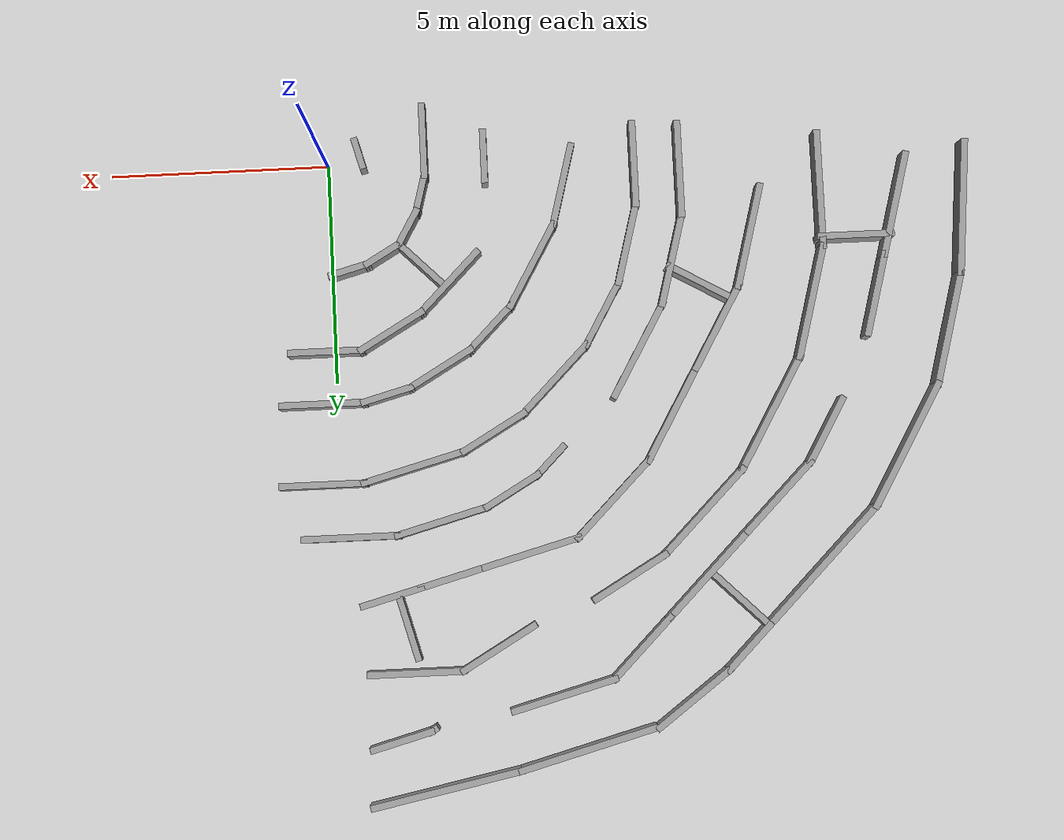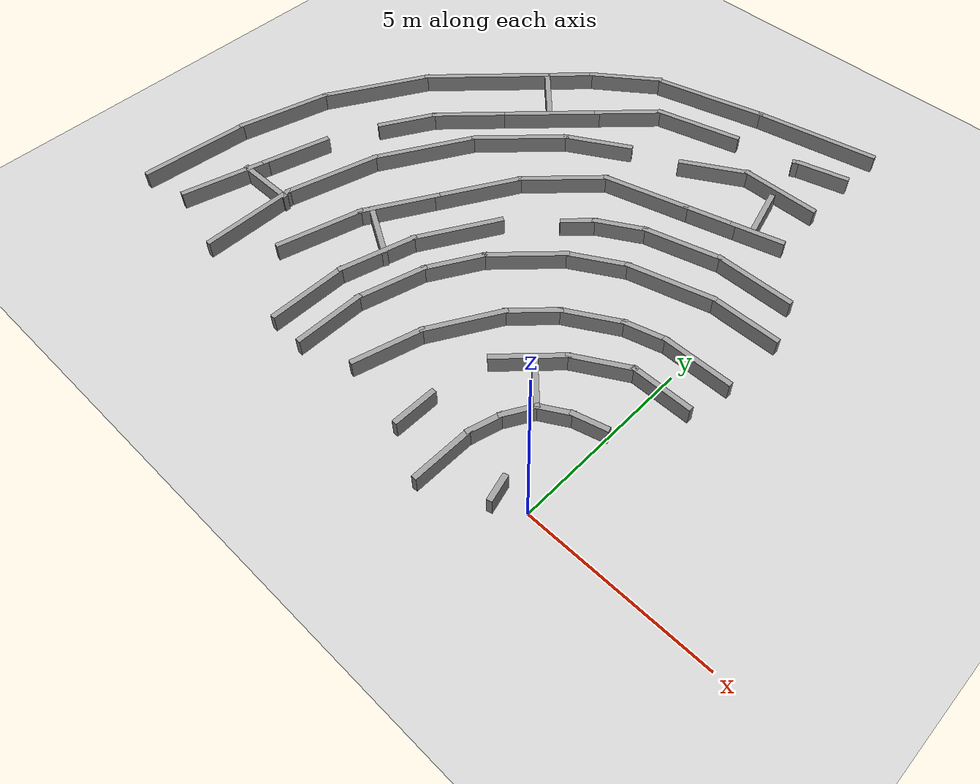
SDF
<sdf version="1.6">
 <world name="default">
  <model name="ground_plane">
   <static>1</static>
   <link name="link">
    <collision name="collision">
     <geometry><plane><normal>0 0 1</normal><size>100 100</size></plane></geometry>
     <surface><friction><ode><mu>100</mu><mu2>50</mu2></ode></friction></surface>
    </collision>
    <visual name="visual">
     <cast_shadows>0</cast_shadows>
     <geometry><plane><normal>0 0 1</normal><size>100 100</size></plane></geometry>
     <material>
      <script><uri>file://media/materials/scripts/gazebo.material</uri><name>Gazebo/Grey</name></script>
     </material>
    </visual>
   </link>
  </model>
  <model name="laby4">
   <pose>-11.3155 -0.151712 0 0 -0 0</pose>
   <link name="Wall_100">
    <collision name="Wall_100_Collision">
     <geometry><box><size>3 0.15 0.5</size></box></geometry>
     <pose>0 0 0.25 0 -0 0</pose>
    </collision>
    <visual name="Wall_100_Visual">
     <pose>0 0 0.25 0 -0 0</pose>
     <geometry><box><size>3 0.15 0.5</size></box></geometry>
     <material>
      <script><uri>file://media/materials/scripts/gazebo.material</uri><name>Gazebo/Grey</name></script>
      <ambient>1 1 1 1</ambient>
     </material>
    </visual>
    <pose>1.51802 6.32561 0 0 0 -2.0944</pose>
   </link>
   <link name="Wall_101">
    <collision name="Wall_101_Collision">
     <geometry><box><size>2.75 0.15 0.5</size></box></geometry>
     <pose>0 0 0.25 0 -0 0</pose>
    </collision>
    <visual name="Wall_101_Visual">
     <pose>0 0 0.25 0 -0 0</pose>
     <geometry><box><size>2.75 0.15 0.5</size></box></geometry>
     <material>
      <script><uri>file://media/materials/scripts/gazebo.material</uri><name>Gazebo/Grey</name></script>
      <ambient>1 1 1 1</ambient>
     </material>
    </visual>
    <pose>0.469052 3.83582 0 0 0 -1.8326</pose>
   </link>
   <link name="Wall_102">
    <collision name="Wall_102_Collision">
     <geometry><box><size>2.75 0.15 0.5</size></box></geometry>
     <pose>0 0 0.25 0 -0 0</pose>
    </collision>
    <visual name="Wall_102_Visual">
     <pose>0 0 0.25 0 -0 0</pose>
     <geometry><box><size>2.75 0.15 0.5</size></box></geometry>
     <material>
      <script><uri>file://media/materials/scripts/gazebo.material</uri><name>Gazebo/Grey</name></script>
      <ambient>1 1 1 1</ambient>
     </material>
    </visual>
    <pose>0.132587 1.28012 0 0 0 -1.5708</pose>
   </link>
   <link name="Wall_130">
    <collision name="Wall_130_Collision">
     <geometry><box><size>2.25 0.15 0.5</size></box></geometry>
     <pose>0 0 0.25 0 -0 0</pose>
    </collision>
    <visual name="Wall_130_Visual">
     <pose>0 0 0.25 0 -0 0</pose>
     <geometry><box><size>2.25 0.15 0.5</size></box></geometry>
     <material>
      <script><uri>file://media/materials/scripts/gazebo.material</uri><name>Gazebo/Grey</name></script>
      <ambient>1 1 1 1</ambient>
     </material>
    </visual>
    <pose>9.73478 11.7732 0 0 -0 3.14159</pose>
   </link>
   <link name="Wall_131">
    <collision name="Wall_131_Collision">
     <geometry><box><size>2 0.15 0.5</size></box></geometry>
     <pose>0 0 0.25 0 -0 0</pose>
    </collision>
    <visual name="Wall_131_Visual">
     <pose>0 0 0.25 0 -0 0</pose>
     <geometry><box><size>2 0.15 0.5</size></box></geometry>
     <material>
      <script><uri>file://media/materials/scripts/gazebo.material</uri><name>Gazebo/Grey</name></script>
      <ambient>1 1 1 1</ambient>
     </material>
    </visual>
    <pose>7.8837 11.3107 0 0 0 -2.61799</pose>
   </link>
   <link name="Wall_133">
    <collision name="Wall_133_Collision">
     <geometry><box><size>1.75 0.15 0.5</size></box></geometry>
     <pose>0 0 0.25 0 -0 0</pose>
    </collision>
    <visual name="Wall_133_Visual">
     <pose>0 0 0.25 0 -0 0</pose>
     <geometry><box><size>1.75 0.15 0.5</size></box></geometry>
     <material>
      <script><uri>file://media/materials/scripts/gazebo.material</uri><name>Gazebo/Grey</name></script>
      <ambient>1 1 1 1</ambient>
     </material>
    </visual>
    <pose>-0.623102 2.36168 0 0 -0 0</pose>
   </link>
   <link name="Wall_145">
    <collision name="Wall_145_Collision">
     <geometry><box><size>2.5 0.15 0.5</size></box></geometry>
     <pose>0 0 0.25 0 -0 0</pose>
    </collision>
    <visual name="Wall_145_Visual">
     <pose>0 0 0.25 0 -0 0</pose>
     <geometry><box><size>2.5 0.15 0.5</size></box></geometry>
     <material>
      <script><uri>file://media/materials/scripts/gazebo.material</uri><name>Gazebo/Grey</name></script>
      <ambient>1 1 1 1</ambient>
     </material>
    </visual>
    <pose>1.80109 2.27995 0 0 -0 1.309</pose>
   </link>
   <link name="Wall_146">
    <collision name="Wall_146_Collision">
     <geometry><box><size>2.25 0.15 0.5</size></box></geometry>
     <pose>0 0 0.25 0 -0 0</pose>
    </collision>
    <visual name="Wall_146_Visual">
     <pose>0 0 0.25 0 -0 0</pose>
     <geometry><box><size>2.25 0.15 0.5</size></box></geometry>
     <material>
      <script><uri>file://media/materials/scripts/gazebo.material</uri><name>Gazebo/Grey</name></script>
      <ambient>1 1 1 1</ambient>
     </material>
    </visual>
    <pose>2.6302 4.32423 0 0 -0 1.0472</pose>
   </link>
   <link name="Wall_147">
    <collision name="Wall_147_Collision">
     <geometry><box><size>2.5 0.15 0.5</size></box></geometry>
     <pose>0 0 0.25 0 -0 0</pose>
    </collision>
    <visual name="Wall_147_Visual">
     <pose>0 0 0.25 0 -0 0</pose>
     <geometry><box><size>2.5 0.15 0.5</size></box></geometry>
     <material>
      <script><uri>file://media/materials/scripts/gazebo.material</uri><name>Gazebo/Grey</name></script>
      <ambient>1 1 1 1</ambient>
     </material>
    </visual>
    <pose>3.7427 6.25114 0 0 -0 1.0472</pose>
   </link>
   <link name="Wall_148">
    <collision name="Wall_148_Collision">
     <geometry><box><size>2.5 0.15 0.5</size></box></geometry>
     <pose>0 0 0.25 0 -0 0</pose>
    </collision>
    <visual name="Wall_148_Visual">
     <pose>0 0 0.25 0 -0 0</pose>
     <geometry><box><size>2.5 0.15 0.5</size></box></geometry>
     <material>
      <script><uri>file://media/materials/scripts/gazebo.material</uri><name>Gazebo/Grey</name></script>
      <ambient>1 1 1 1</ambient>
     </material>
    </visual>
    <pose>5.16105 8.09957 0 0 -0 0.785398</pose>
   </link>
   <link name="Wall_149">
    <collision name="Wall_149_Collision">
     <geometry><box><size>2.5 0.15 0.5</size></box></geometry>
     <pose>0 0 0.25 0 -0 0</pose>
    </collision>
    <visual name="Wall_149_Visual">
     <pose>0 0 0.25 0 -0 0</pose>
     <geometry><box><size>2.5 0.15 0.5</size></box></geometry>
     <material>
      <script><uri>file://media/materials/scripts/gazebo.material</uri><name>Gazebo/Grey</name></script>
      <ambient>1 1 1 1</ambient>
     </material>
    </visual>
    <pose>7.12687 9.23453 0 0 -0 0.261799</pose>
   </link>
   <link name="Wall_150">
    <collision name="Wall_150_Collision">
     <geometry><box><size>1.5 0.15 0.5</size></box></geometry>
     <pose>0 0 0.25 0 -0 0</pose>
    </collision>
    <visual name="Wall_150_Visual">
     <pose>0 0 0.25 0 -0 0</pose>
     <geometry><box><size>1.5 0.15 0.5</size></box></geometry>
     <material>
      <script><uri>file://media/materials/scripts/gazebo.material</uri><name>Gazebo/Grey</name></script>
      <ambient>1 1 1 1</ambient>
     </material>
    </visual>
    <pose>8.91383 9.71335 0 0 -0 0.261799</pose>
   </link>
   <link name="Wall_151">
    <collision name="Wall_151_Collision">
     <geometry><box><size>1.5 0.15 0.5</size></box></geometry>
     <pose>0 0 0.25 0 -0 0</pose>
    </collision>
    <visual name="Wall_151_Visual">
     <pose>0 0 0.25 0 -0 0</pose>
     <geometry><box><size>1.5 0.15 0.5</size></box></geometry>
     <material>
      <script><uri>file://media/materials/scripts/gazebo.material</uri><name>Gazebo/Grey</name></script>
      <ambient>1 1 1 1</ambient>
     </material>
    </visual>
    <pose>10.2178 10.0628 0 0 -0 0.261799</pose>
   </link>
   <link name="Wall_178">
    <collision name="Wall_178_Collision">
     <geometry><box><size>1.5 0.15 0.5</size></box></geometry>
     <pose>0 0 0.25 0 -0 0</pose>
    </collision>
    <visual name="Wall_178_Visual">
     <pose>0 0 0.25 0 -0 0</pose>
     <geometry><box><size>1.5 0.15 0.5</size></box></geometry>
     <material>
      <script><uri>file://media/materials/scripts/gazebo.material</uri><name>Gazebo/Grey</name></script>
      <ambient>1 1 1 1</ambient>
     </material>
    </visual>
    <pose>9.87034 10.7893 0 0 0 -1.309</pose>
   </link>
   <link name="Wall_197">
    <collision name="Wall_197_Collision">
     <geometry><box><size>2.25 0.15 0.5</size></box></geometry>
     <pose>0 0 0.25 0 -0 0</pose>
    </collision>
    <visual name="Wall_197_Visual">
     <pose>0 0 0.25 0 -0 0</pose>
     <geometry><box><size>2.25 0.15 0.5</size></box></geometry>
     <material>
      <script><uri>file://media/materials/scripts/gazebo.material</uri><name>Gazebo/Grey</name></script>
      <ambient>1 1 1 1</ambient>
     </material>
    </visual>
    <pose>11.0892 8.69523 0 0 -0 3.14159</pose>
   </link>
   <link name="Wall_198">
    <collision name="Wall_198_Collision">
     <geometry><box><size>2.25 0.15 0.5</size></box></geometry>
     <pose>0 0 0.25 0 -0 0</pose>
    </collision>
    <visual name="Wall_198_Visual">
     <pose>0 0 0.25 0 -0 0</pose>
     <geometry><box><size>2.25 0.15 0.5</size></box></geometry>
     <material>
      <script><uri>file://media/materials/scripts/gazebo.material</uri><name>Gazebo/Grey</name></script>
      <ambient>1 1 1 1</ambient>
     </material>
    </visual>
    <pose>9.02499 8.42347 0 0 0 -2.87979</pose>
   </link>
   <link name="Wall_199">
    <collision name="Wall_199_Collision">
     <geometry><box><size>1.5 0.15 0.5</size></box></geometry>
     <pose>0 0 0.25 0 -0 0</pose>
    </collision>
    <visual name="Wall_199_Visual">
     <pose>0 0 0.25 0 -0 0</pose>
     <geometry><box><size>1.5 0.15 0.5</size></box></geometry>
     <material>
      <script><uri>file://media/materials/scripts/gazebo.material</uri><name>Gazebo/Grey</name></script>
      <ambient>1 1 1 1</ambient>
     </material>
    </visual>
    <pose>7.4262 7.81421 0 0 0 -2.61799</pose>
   </link>
   <link name="Wall_200">
    <collision name="Wall_200_Collision">
     <geometry><box><size>1 0.15 0.5</size></box></geometry>
     <pose>0 0 0.25 0 -0 0</pose>
    </collision>
    <visual name="Wall_200_Visual">
     <pose>0 0 0.25 0 -0 0</pose>
     <geometry><box><size>1 0.15 0.5</size></box></geometry>
     <material>
      <script><uri>file://media/materials/scripts/gazebo.material</uri><name>Gazebo/Grey</name></script>
      <ambient>1 1 1 1</ambient>
     </material>
    </visual>
    <pose>6.54111 7.17619 0 0 0 -2.35619</pose>
   </link>
   <link name="Wall_202">
    <collision name="Wall_202_Collision">
     <geometry><box><size>2.5 0.15 0.5</size></box></geometry>
     <pose>0 0 0.25 0 -0 0</pose>
    </collision>
    <visual name="Wall_202_Visual">
     <pose>0 0 0.25 0 -0 0</pose>
     <geometry><box><size>2.5 0.15 0.5</size></box></geometry>
     <material>
      <script><uri>file://media/materials/scripts/gazebo.material</uri><name>Gazebo/Grey</name></script>
      <ambient>1 1 1 1</ambient>
     </material>
    </visual>
    <pose>4.43217 4.75757 0 0 0 -2.0944</pose>
   </link>
   <link name="Wall_203">
    <collision name="Wall_203_Collision">
     <geometry><box><size>2.25 0.15 0.5</size></box></geometry>
     <pose>0 0 0.25 0 -0 0</pose>
    </collision>
    <visual name="Wall_203_Visual">
     <pose>0 0 0.25 0 -0 0</pose>
     <geometry><box><size>2.25 0.15 0.5</size></box></geometry>
     <material>
      <script><uri>file://media/materials/scripts/gazebo.material</uri><name>Gazebo/Grey</name></script>
      <ambient>1 1 1 1</ambient>
     </material>
    </visual>
    <pose>3.57291 2.72576 0 0 0 -1.8326</pose>
   </link>
   <link name="Wall_204">
    <collision name="Wall_204_Collision">
     <geometry><box><size>2.25 0.15 0.5</size></box></geometry>
     <pose>0 0 0.25 0 -0 0</pose>
    </collision>
    <visual name="Wall_204_Visual">
     <pose>0 0 0.25 0 -0 0</pose>
     <geometry><box><size>2.25 0.15 0.5</size></box></geometry>
     <material>
      <script><uri>file://media/materials/scripts/gazebo.material</uri><name>Gazebo/Grey</name></script>
      <ambient>1 1 1 1</ambient>
     </material>
    </visual>
    <pose>3.30115 0.661543 0 0 0 -1.5708</pose>
   </link>
   <link name="Wall_216">
    <collision name="Wall_216_Collision">
     <geometry><box><size>1.75 0.15 0.5</size></box></geometry>
     <pose>0 0 0.25 0 -0 0</pose>
    </collision>
    <visual name="Wall_216_Visual">
     <pose>0 0 0.25 0 -0 0</pose>
     <geometry><box><size>1.75 0.15 0.5</size></box></geometry>
     <material>
      <script><uri>file://media/materials/scripts/gazebo.material</uri><name>Gazebo/Grey</name></script>
      <ambient>1 1 1 1</ambient>
     </material>
    </visual>
    <pose>2.94863 3.28644 0 0 0 -0.523599</pose>
   </link>
   <link name="Wall_227">
    <collision name="Wall_227_Collision">
     <geometry><box><size>2 0.15 0.5</size></box></geometry>
     <pose>0 0 0.25 0 -0 0</pose>
    </collision>
    <visual name="Wall_227_Visual">
     <pose>0 0 0.25 0 -0 0</pose>
     <geometry><box><size>2 0.15 0.5</size></box></geometry>
     <material>
      <script><uri>file://media/materials/scripts/gazebo.material</uri><name>Gazebo/Grey</name></script>
      <ambient>1 1 1 1</ambient>
     </material>
    </visual>
    <pose>4.32654 0.494326 0 0 -0 1.5708</pose>
   </link>
   <link name="Wall_228">
    <collision name="Wall_228_Collision">
     <geometry><box><size>2 0.15 0.5</size></box></geometry>
     <pose>0 0 0.25 0 -0 0</pose>
    </collision>
    <visual name="Wall_228_Visual">
     <pose>0 0 0.25 0 -0 0</pose>
     <geometry><box><size>2 0.15 0.5</size></box></geometry>
     <material>
      <script><uri>file://media/materials/scripts/gazebo.material</uri><name>Gazebo/Grey</name></script>
      <ambient>1 1 1 1</ambient>
     </material>
    </visual>
    <pose>4.56594 2.31281 0 0 -0 1.309</pose>
   </link>
   <link name="Wall_229">
    <collision name="Wall_229_Collision">
     <geometry><box><size>1.75 0.15 0.5</size></box></geometry>
     <pose>0 0 0.25 0 -0 0</pose>
    </collision>
    <visual name="Wall_229_Visual">
     <pose>0 0 0.25 0 -0 0</pose>
     <geometry><box><size>1.75 0.15 0.5</size></box></geometry>
     <material>
      <script><uri>file://media/materials/scripts/gazebo.material</uri><name>Gazebo/Grey</name></script>
      <ambient>1 1 1 1</ambient>
     </material>
    </visual>
    <pose>5.20535 3.89911 0 0 -0 1.0472</pose>
   </link>
   <link name="Wall_230">
    <collision name="Wall_230_Collision">
     <geometry><box><size>2.25 0.15 0.5</size></box></geometry>
     <pose>0 0 0.25 0 -0 0</pose>
    </collision>
    <visual name="Wall_230_Visual">
     <pose>0 0 0.25 0 -0 0</pose>
     <geometry><box><size>2.25 0.15 0.5</size></box></geometry>
     <material>
      <script><uri>file://media/materials/scripts/gazebo.material</uri><name>Gazebo/Grey</name></script>
      <ambient>1 1 1 1</ambient>
     </material>
    </visual>
    <pose>6.34781 5.33439 0 0 -0 0.785398</pose>
   </link>
   <link name="Wall_231">
    <collision name="Wall_231_Collision">
     <geometry><box><size>1.75 0.15 0.5</size></box></geometry>
     <pose>0 0 0.25 0 -0 0</pose>
    </collision>
    <visual name="Wall_231_Visual">
     <pose>0 0 0.25 0 -0 0</pose>
     <geometry><box><size>1.75 0.15 0.5</size></box></geometry>
     <material>
      <script><uri>file://media/materials/scripts/gazebo.material</uri><name>Gazebo/Grey</name></script>
      <ambient>1 1 1 1</ambient>
     </material>
    </visual>
    <pose>7.7831 6.47685 0 0 -0 0.523599</pose>
   </link>
   <link name="Wall_232">
    <collision name="Wall_232_Collision">
     <geometry><box><size>2.5 0.15 0.5</size></box></geometry>
     <pose>0 0 0.25 0 -0 0</pose>
    </collision>
    <visual name="Wall_232_Visual">
     <pose>0 0 0.25 0 -0 0</pose>
     <geometry><box><size>2.5 0.15 0.5</size></box></geometry>
     <material>
      <script><uri>file://media/materials/scripts/gazebo.material</uri><name>Gazebo/Grey</name></script>
      <ambient>1 1 1 1</ambient>
     </material>
    </visual>
    <pose>9.61088 7.18097 0 0 -0 0.261799</pose>
   </link>
   <link name="Wall_233">
    <collision name="Wall_233_Collision">
     <geometry><box><size>2 0.15 0.5</size></box></geometry>
     <pose>0 0 0.25 0 -0 0</pose>
    </collision>
    <visual name="Wall_233_Visual">
     <pose>0 0 0.25 0 -0 0</pose>
     <geometry><box><size>2 0.15 0.5</size></box></geometry>
     <material>
      <script><uri>file://media/materials/scripts/gazebo.material</uri><name>Gazebo/Grey</name></script>
      <ambient>1 1 1 1</ambient>
     </material>
    </visual>
    <pose>11.6708 7.48508 0 0 -0 0</pose>
   </link>
   <link name="Wall_250">
    <collision name="Wall_250_Collision">
     <geometry><box><size>2 0.15 0.5</size></box></geometry>
     <pose>0 0 0.25 0 -0 0</pose>
    </collision>
    <visual name="Wall_250_Visual">
     <pose>0 0 0.25 0 -0 0</pose>
     <geometry><box><size>2 0.15 0.5</size></box></geometry>
     <material>
      <script><uri>file://media/materials/scripts/gazebo.material</uri><name>Gazebo/Grey</name></script>
      <ambient>1 1 1 1</ambient>
     </material>
    </visual>
    <pose>5.98613 0.912496 0 0 -0 1.309</pose>
   </link>
   <link name="Wall_251">
    <collision name="Wall_251_Collision">
     <geometry><box><size>2.25 0.15 0.5</size></box></geometry>
     <pose>0 0 0.25 0 -0 0</pose>
    </collision>
    <visual name="Wall_251_Visual">
     <pose>0 0 0.25 0 -0 0</pose>
     <geometry><box><size>2.25 0.15 0.5</size></box></geometry>
     <material>
      <script><uri>file://media/materials/scripts/gazebo.material</uri><name>Gazebo/Grey</name></script>
      <ambient>1 1 1 1</ambient>
     </material>
    </visual>
    <pose>6.75054 2.7153 0 0 -0 1.0472</pose>
   </link>
   <link name="Wall_252">
    <collision name="Wall_252_Collision">
     <geometry><box><size>1.5 0.15 0.5</size></box></geometry>
     <pose>0 0 0.25 0 -0 0</pose>
    </collision>
    <visual name="Wall_252_Visual">
     <pose>0 0 0.25 0 -0 0</pose>
     <geometry><box><size>1.5 0.15 0.5</size></box></geometry>
     <material>
      <script><uri>file://media/materials/scripts/gazebo.material</uri><name>Gazebo/Grey</name></script>
      <ambient>1 1 1 1</ambient>
     </material>
    </visual>
    <pose>7.75283 4.10193 0 0 -0 0.785398</pose>
   </link>
   <link name="Wall_253">
    <collision name="Wall_253_Collision">
     <geometry><box><size>1.75 0.15 0.5</size></box></geometry>
     <pose>0 0 0.25 0 -0 0</pose>
    </collision>
    <visual name="Wall_253_Visual">
     <pose>0 0 0.25 0 -0 0</pose>
     <geometry><box><size>1.75 0.15 0.5</size></box></geometry>
     <material>
      <script><uri>file://media/materials/scripts/gazebo.material</uri><name>Gazebo/Grey</name></script>
      <ambient>1 1 1 1</ambient>
     </material>
    </visual>
    <pose>8.92295 4.97922 0 0 -0 0.523599</pose>
   </link>
   <link name="Wall_254">
    <collision name="Wall_254_Collision">
     <geometry><box><size>1.25 0.15 0.5</size></box></geometry>
     <pose>0 0 0.25 0 -0 0</pose>
    </collision>
    <visual name="Wall_254_Visual">
     <pose>0 0 0.25 0 -0 0</pose>
     <geometry><box><size>1.25 0.15 0.5</size></box></geometry>
     <material>
      <script><uri>file://media/materials/scripts/gazebo.material</uri><name>Gazebo/Grey</name></script>
      <ambient>1 1 1 1</ambient>
     </material>
    </visual>
    <pose>10.147 5.52158 0 0 -0 0.261799</pose>
   </link>
   <link name="Wall_255">
    <collision name="Wall_255_Collision">
     <geometry><box><size>2 0.15 0.5</size></box></geometry>
     <pose>0 0 0.25 0 -0 0</pose>
    </collision>
    <visual name="Wall_255_Visual">
     <pose>0 0 0.25 0 -0 0</pose>
     <geometry><box><size>2 0.15 0.5</size></box></geometry>
     <material>
      <script><uri>file://media/materials/scripts/gazebo.material</uri><name>Gazebo/Grey</name></script>
      <ambient>1 1 1 1</ambient>
     </material>
    </visual>
    <pose>11.6033 5.66393 0 0 -0 0</pose>
   </link>
   <link name="Wall_275">
    <collision name="Wall_275_Collision">
     <geometry><box><size>1.25 0.15 0.5</size></box></geometry>
     <pose>0 0 0.25 0 -0 0</pose>
    </collision>
    <visual name="Wall_275_Visual">
     <pose>0 0 0.25 0 -0 0</pose>
     <geometry><box><size>1.25 0.15 0.5</size></box></geometry>
     <material>
      <script><uri>file://media/materials/scripts/gazebo.material</uri><name>Gazebo/Grey</name></script>
      <ambient>1 1 1 1</ambient>
     </material>
    </visual>
    <pose>7.73437 0.158867 0 0 -0 1.5708</pose>
   </link>
   <link name="Wall_277">
    <collision name="Wall_277_Collision">
     <geometry><box><size>2 0.15 0.5</size></box></geometry>
     <pose>0 0 0.25 0 -0 0</pose>
    </collision>
    <visual name="Wall_277_Visual">
     <pose>0 0 0.25 0 -0 0</pose>
     <geometry><box><size>2 0.15 0.5</size></box></geometry>
     <material>
      <script><uri>file://media/materials/scripts/gazebo.material</uri><name>Gazebo/Grey</name></script>
      <ambient>1 1 1 1</ambient>
     </material>
    </visual>
    <pose>8.64942 3.02218 0 0 -0 0.785398</pose>
   </link>
   <link name="Wall_278">
    <collision name="Wall_278_Collision">
     <geometry><box><size>1.75 0.15 0.5</size></box></geometry>
     <pose>0 0 0.25 0 -0 0</pose>
    </collision>
    <visual name="Wall_278_Visual">
     <pose>0 0 0.25 0 -0 0</pose>
     <geometry><box><size>1.75 0.15 0.5</size></box></geometry>
     <material>
      <script><uri>file://media/materials/scripts/gazebo.material</uri><name>Gazebo/Grey</name></script>
      <ambient>1 1 1 1</ambient>
     </material>
    </visual>
    <pose>9.99632 4.07625 0 0 -0 0.523599</pose>
   </link>
   <link name="Wall_279">
    <collision name="Wall_279_Collision">
     <geometry><box><size>1.75 0.15 0.5</size></box></geometry>
     <pose>0 0 0.25 0 -0 0</pose>
    </collision>
    <visual name="Wall_279_Visual">
     <pose>0 0 0.25 0 -0 0</pose>
     <geometry><box><size>1.75 0.15 0.5</size></box></geometry>
     <material>
      <script><uri>file://media/materials/scripts/gazebo.material</uri><name>Gazebo/Grey</name></script>
      <ambient>1 1 1 1</ambient>
     </material>
    </visual>
    <pose>11.4891 4.47625 0 0 -0 0</pose>
   </link>
   <link name="Wall_297">
    <collision name="Wall_297_Collision">
     <geometry><box><size>1.75 0.15 0.5</size></box></geometry>
     <pose>0 0 0.25 0 -0 0</pose>
    </collision>
    <visual name="Wall_297_Visual">
     <pose>0 0 0.25 0 -0 0</pose>
     <geometry><box><size>1.75 0.15 0.5</size></box></geometry>
     <material>
      <script><uri>file://media/materials/scripts/gazebo.material</uri><name>Gazebo/Grey</name></script>
      <ambient>1 1 1 1</ambient>
     </material>
    </visual>
    <pose>9.1005 -0.258015 0 0 -0 1.5708</pose>
   </link>
   <link name="Wall_298">
    <collision name="Wall_298_Collision">
     <geometry><box><size>1 0.15 0.5</size></box></geometry>
     <pose>0 0 0.25 0 -0 0</pose>
    </collision>
    <visual name="Wall_298_Visual">
     <pose>0 0 0.25 0 -0 0</pose>
     <geometry><box><size>1 0.15 0.5</size></box></geometry>
     <material>
      <script><uri>file://media/materials/scripts/gazebo.material</uri><name>Gazebo/Grey</name></script>
      <ambient>1 1 1 1</ambient>
     </material>
    </visual>
    <pose>9.2105 0.952504 0 0 -0 1.309</pose>
   </link>
   <link name="Wall_299">
    <collision name="Wall_299_Collision">
     <geometry><box><size>1 0.15 0.5</size></box></geometry>
     <pose>0 0 0.25 0 -0 0</pose>
    </collision>
    <visual name="Wall_299_Visual">
     <pose>0 0 0.25 0 -0 0</pose>
     <geometry><box><size>1 0.15 0.5</size></box></geometry>
     <material>
      <script><uri>file://media/materials/scripts/gazebo.material</uri><name>Gazebo/Grey</name></script>
      <ambient>1 1 1 1</ambient>
     </material>
    </visual>
    <pose>9.53299 1.73108 0 0 -0 1.0472</pose>
   </link>
   <link name="Wall_300">
    <collision name="Wall_300_Collision">
     <geometry><box><size>1 0.15 0.5</size></box></geometry>
     <pose>0 0 0.25 0 -0 0</pose>
    </collision>
    <visual name="Wall_300_Visual">
     <pose>0 0 0.25 0 -0 0</pose>
     <geometry><box><size>1 0.15 0.5</size></box></geometry>
     <material>
      <script><uri>file://media/materials/scripts/gazebo.material</uri><name>Gazebo/Grey</name></script>
      <ambient>1 1 1 1</ambient>
     </material>
    </visual>
    <pose>10.1136 2.31164 0 0 -0 0.523599</pose>
   </link>
   <link name="Wall_301">
    <collision name="Wall_301_Collision">
     <geometry><box><size>1 0.15 0.5</size></box></geometry>
     <pose>0 0 0.25 0 -0 0</pose>
    </collision>
    <visual name="Wall_301_Visual">
     <pose>0 0 0.25 0 -0 0</pose>
     <geometry><box><size>1 0.15 0.5</size></box></geometry>
     <material>
      <script><uri>file://media/materials/scripts/gazebo.material</uri><name>Gazebo/Grey</name></script>
      <ambient>1 1 1 1</ambient>
     </material>
    </visual>
    <pose>10.8921 2.63414 0 0 -0 0.261799</pose>
   </link>
   <link name="Wall_307">
    <collision name="Wall_307_Collision">
     <geometry><box><size>1.5 0.15 0.5</size></box></geometry>
     <pose>0 0 0.25 0 -0 0</pose>
    </collision>
    <visual name="Wall_307_Visual">
     <pose>0 0 0.25 0 -0 0</pose>
     <geometry><box><size>1.5 0.15 0.5</size></box></geometry>
     <material>
      <script><uri>file://media/materials/scripts/gazebo.material</uri><name>Gazebo/Grey</name></script>
      <ambient>1 1 1 1</ambient>
     </material>
    </visual>
    <pose>9.2682 2.57644 0 0 0 -0.785398</pose>
   </link>
   <link name="Wall_319">
    <collision name="Wall_319_Collision">
     <geometry><box><size>0.75 0.15 0.5</size></box></geometry>
     <pose>0 0 0.25 0 -0 0</pose>
    </collision>
    <visual name="Wall_319_Visual">
     <pose>0 0 0.25 0 -0 0</pose>
     <geometry><box><size>0.75 0.15 0.5</size></box></geometry>
     <material>
      <script><uri>file://media/materials/scripts/gazebo.material</uri><name>Gazebo/Grey</name></script>
      <ambient>1 1 1 1</ambient>
     </material>
    </visual>
    <pose>10.5802 -0.029098 0 0 -0 1.8326</pose>
   </link>
   <link name="Wall_32">
    <collision name="Wall_32_Collision">
     <geometry><box><size>3.15357 0.15 0.5</size></box></geometry>
     <pose>0 0 0.25 0 -0 0</pose>
    </collision>
    <visual name="Wall_32_Visual">
     <pose>0 0 0.25 0 -0 0</pose>
     <geometry><box><size>3.15357 0.15 0.5</size></box></geometry>
     <material>
      <script><uri>file://media/materials/scripts/gazebo.material</uri><name>Gazebo/Grey</name></script>
      <ambient>1 1 1 1</ambient>
     </material>
    </visual>
    <pose>-3.08477 1.83515 0 0 -0 1.48014</pose>
   </link>
   <link name="Wall_33">
    <collision name="Wall_33_Collision">
     <geometry><box><size>2.75 0.15 0.5</size></box></geometry>
     <pose>0 0 0.25 0 -0 0</pose>
    </collision>
    <visual name="Wall_33_Visual">
     <pose>0 0 0.25 0 -0 0</pose>
     <geometry><box><size>2.75 0.15 0.5</size></box></geometry>
     <material>
      <script><uri>file://media/materials/scripts/gazebo.material</uri><name>Gazebo/Grey</name></script>
      <ambient>1 1 1 1</ambient>
     </material>
    </visual>
    <pose>-2.61235 4.58647 0 0 -0 1.309</pose>
   </link>
   <link name="Wall_34">
    <collision name="Wall_34_Collision">
     <geometry><box><size>3.25 0.15 0.5</size></box></geometry>
     <pose>0 0 0.25 0 -0 0</pose>
    </collision>
    <visual name="Wall_34_Visual">
     <pose>0 0 0.25 0 -0 0</pose>
     <geometry><box><size>3.25 0.15 0.5</size></box></geometry>
     <material>
      <script><uri>file://media/materials/scripts/gazebo.material</uri><name>Gazebo/Grey</name></script>
      <ambient>1 1 1 1</ambient>
     </material>
    </visual>
    <pose>-1.50088 7.18451 0 0 -0 1.0472</pose>
   </link>
   <link name="Wall_35">
    <collision name="Wall_35_Collision">
     <geometry><box><size>3.75 0.15 0.5</size></box></geometry>
     <pose>0 0 0.25 0 -0 0</pose>
    </collision>
    <visual name="Wall_35_Visual">
     <pose>0 0 0.25 0 -0 0</pose>
     <geometry><box><size>3.75 0.15 0.5</size></box></geometry>
     <material>
      <script><uri>file://media/materials/scripts/gazebo.material</uri><name>Gazebo/Grey</name></script>
      <ambient>1 1 1 1</ambient>
     </material>
    </visual>
    <pose>0.546908 9.79964 0 0 -0 0.785398</pose>
   </link>
   <link name="Wall_36">
    <collision name="Wall_36_Collision">
     <geometry><box><size>1.5 0.15 0.5</size></box></geometry>
     <pose>0 0 0.25 0 -0 0</pose>
    </collision>
    <visual name="Wall_36_Visual">
     <pose>0 0 0.25 0 -0 0</pose>
     <geometry><box><size>1.5 0.15 0.5</size></box></geometry>
     <material>
      <script><uri>file://media/materials/scripts/gazebo.material</uri><name>Gazebo/Grey</name></script>
      <ambient>1 1 1 1</ambient>
     </material>
    </visual>
    <pose>2.297 11.5497 0 0 -0 0.785398</pose>
   </link>
   <link name="Wall_37">
    <collision name="Wall_37_Collision">
     <geometry><box><size>2.1686 0.15 0.5</size></box></geometry>
     <pose>0 0 0.25 0 -0 0</pose>
    </collision>
    <visual name="Wall_37_Visual">
     <pose>0 0 0.25 0 -0 0</pose>
     <geometry><box><size>2.1686 0.15 0.5</size></box></geometry>
     <material>
      <script><uri>file://media/materials/scripts/gazebo.material</uri><name>Gazebo/Grey</name></script>
      <ambient>1 1 1 1</ambient>
     </material>
    </visual>
    <pose>3.58443 12.629 0 0 -0 0.63903</pose>
   </link>
   <link name="Wall_38">
    <collision name="Wall_38_Collision">
     <geometry><box><size>3.25 0.15 0.5</size></box></geometry>
     <pose>0 0 0.25 0 -0 0</pose>
    </collision>
    <visual name="Wall_38_Visual">
     <pose>0 0 0.25 0 -0 0</pose>
     <geometry><box><size>3.25 0.15 0.5</size></box></geometry>
     <material>
      <script><uri>file://media/materials/scripts/gazebo.material</uri><name>Gazebo/Grey</name></script>
      <ambient>1 1 1 1</ambient>
     </material>
    </visual>
    <pose>6.00114 13.6321 0 0 -0 0.261799</pose>
   </link>
   <link name="Wall_39">
    <collision name="Wall_39_Collision">
     <geometry><box><size>3.5293 0.15 0.5</size></box></geometry>
     <pose>0 0 0.25 0 -0 0</pose>
    </collision>
    <visual name="Wall_39_Visual">
     <pose>0 0 0.25 0 -0 0</pose>
     <geometry><box><size>3.5293 0.15 0.5</size></box></geometry>
     <material>
      <script><uri>file://media/materials/scripts/gazebo.material</uri><name>Gazebo/Grey</name></script>
      <ambient>1 1 1 1</ambient>
     </material>
    </visual>
    <pose>9.15494 14.3658 0 0 -0 0.198064</pose>
   </link>
   <link name="Wall_77">
    <collision name="Wall_77_Collision">
     <geometry><box><size>1.5 0.15 0.5</size></box></geometry>
     <pose>0 0 0.25 0 -0 0</pose>
    </collision>
    <visual name="Wall_77_Visual">
     <pose>0 0 0.25 0 -0 0</pose>
     <geometry><box><size>1.5 0.15 0.5</size></box></geometry>
     <material>
      <script><uri>file://media/materials/scripts/gazebo.material</uri><name>Gazebo/Grey</name></script>
      <ambient>1 1 1 1</ambient>
     </material>
    </visual>
    <pose>10.1177 13.2543 0 0 0 -2.87979</pose>
   </link>
   <link name="Wall_78">
    <collision name="Wall_78_Collision">
     <geometry><box><size>0.25 0.15 0.5</size></box></geometry>
     <pose>0 0 0.25 0 -0 0</pose>
    </collision>
    <visual name="Wall_78_Visual">
     <pose>0 0 0.25 0 -0 0</pose>
     <geometry><box><size>0.25 0.15 0.5</size></box></geometry>
     <material>
      <script><uri>file://media/materials/scripts/gazebo.material</uri><name>Gazebo/Grey</name></script>
      <ambient>1 1 1 1</ambient>
     </material>
    </visual>
    <pose>9.42239 13.0546 0 0 0 -2.61799</pose>
   </link>
   <link name="Wall_80">
    <collision name="Wall_80_Collision">
     <geometry><box><size>2.5 0.15 0.5</size></box></geometry>
     <pose>0 0 0.25 0 -0 0</pose>
    </collision>
    <visual name="Wall_80_Visual">
     <pose>0 0 0.25 0 -0 0</pose>
     <geometry><box><size>2.5 0.15 0.5</size></box></geometry>
     <material>
      <script><uri>file://media/materials/scripts/gazebo.material</uri><name>Gazebo/Grey</name></script>
      <ambient>1 1 1 1</ambient>
     </material>
    </visual>
    <pose>6.46818 12.4111 0 0 0 -2.87979</pose>
   </link>
   <link name="Wall_81">
    <collision name="Wall_81_Collision">
     <geometry><box><size>2 0.15 0.5</size></box></geometry>
     <pose>0 0 0.25 0 -0 0</pose>
    </collision>
    <visual name="Wall_81_Visual">
     <pose>0 0 0.25 0 -0 0</pose>
     <geometry><box><size>2 0.15 0.5</size></box></geometry>
     <material>
      <script><uri>file://media/materials/scripts/gazebo.material</uri><name>Gazebo/Grey</name></script>
      <ambient>1 1 1 1</ambient>
     </material>
    </visual>
    <pose>4.67914 11.4529 0 0 0 -2.35619</pose>
   </link>
   <link name="Wall_82">
    <collision name="Wall_82_Collision">
     <geometry><box><size>2.75 0.15 0.5</size></box></geometry>
     <pose>0 0 0.25 0 -0 0</pose>
    </collision>
    <visual name="Wall_82_Visual">
     <pose>0 0 0.25 0 -0 0</pose>
     <geometry><box><size>2.75 0.15 0.5</size></box></geometry>
     <material>
      <script><uri>file://media/materials/scripts/gazebo.material</uri><name>Gazebo/Grey</name></script>
      <ambient>1 1 1 1</ambient>
     </material>
    </visual>
    <pose>3.10583 9.87957 0 0 0 -2.35619</pose>
   </link>
   <link name="Wall_83">
    <collision name="Wall_83_Collision">
     <geometry><box><size>2.25 0.15 0.5</size></box></geometry>
     <pose>0 0 0.25 0 -0 0</pose>
    </collision>
    <visual name="Wall_83_Visual">
     <pose>0 0 0.25 0 -0 0</pose>
     <geometry><box><size>2.25 0.15 0.5</size></box></geometry>
     <material>
      <script><uri>file://media/materials/scripts/gazebo.material</uri><name>Gazebo/Grey</name></script>
      <ambient>1 1 1 1</ambient>
     </material>
    </visual>
    <pose>1.44413 8.21786 0 0 0 -2.35619</pose>
   </link>
   <link name="Wall_84">
    <collision name="Wall_84_Collision">
     <geometry><box><size>1.75 0.15 0.5</size></box></geometry>
     <pose>0 0 0.25 0 -0 0</pose>
    </collision>
    <visual name="Wall_84_Visual">
     <pose>0 0 0.25 0 -0 0</pose>
     <geometry><box><size>1.75 0.15 0.5</size></box></geometry>
     <material>
      <script><uri>file://media/materials/scripts/gazebo.material</uri><name>Gazebo/Grey</name></script>
      <ambient>1 1 1 1</ambient>
     </material>
    </visual>
    <pose>0.301667 6.78258 0 0 0 -2.0944</pose>
   </link>
   <link name="Wall_86">
    <collision name="Wall_86_Collision">
     <geometry><box><size>2 0.15 0.5</size></box></geometry>
     <pose>0 0 0.25 0 -0 0</pose>
    </collision>
    <visual name="Wall_86_Visual">
     <pose>0 0 0.25 0 -0 0</pose>
     <geometry><box><size>2 0.15 0.5</size></box></geometry>
     <material>
      <script><uri>file://media/materials/scripts/gazebo.material</uri><name>Gazebo/Grey</name></script>
      <ambient>1 1 1 1</ambient>
     </material>
    </visual>
    <pose>-1.00826 3.72569 0 0 0 -1.8326</pose>
   </link>
   <link name="Wall_87">
    <collision name="Wall_87_Collision">
     <geometry><box><size>2.5 0.15 0.5</size></box></geometry>
     <pose>0 0 0.25 0 -0 0</pose>
    </collision>
    <visual name="Wall_87_Visual">
     <pose>0 0 0.25 0 -0 0</pose>
     <geometry><box><size>2.5 0.15 0.5</size></box></geometry>
     <material>
      <script><uri>file://media/materials/scripts/gazebo.material</uri><name>Gazebo/Grey</name></script>
      <ambient>1 1 1 1</ambient>
     </material>
    </visual>
    <pose>-1.55178 1.69725 0 0 0 -1.8326</pose>
   </link>
   <link name="Wall_94">
    <collision name="Wall_94_Collision">
     <geometry><box><size>1.75 0.15 0.5</size></box></geometry>
     <pose>0 0 0.25 0 -0 0</pose>
    </collision>
    <visual name="Wall_94_Visual">
     <pose>0 0 0.25 0 -0 0</pose>
     <geometry><box><size>1.75 0.15 0.5</size></box></geometry>
     <material>
      <script><uri>file://media/materials/scripts/gazebo.material</uri><name>Gazebo/Grey</name></script>
      <ambient>1 1 1 1</ambient>
     </material>
    </visual>
    <pose>2.38539 10.5068 0 0 -0 2.35619</pose>
   </link>
   <link name="Wall_98">
    <collision name="Wall_98_Collision">
     <geometry><box><size>2 0.15 0.5</size></box></geometry>
     <pose>0 0 0.25 0 -0 0</pose>
    </collision>
    <visual name="Wall_98_Visual">
     <pose>0 0 0.25 0 -0 0</pose>
     <geometry><box><size>2 0.15 0.5</size></box></geometry>
     <material>
      <script><uri>file://media/materials/scripts/gazebo.material</uri><name>Gazebo/Grey</name></script>
      <ambient>1 1 1 1</ambient>
     </material>
    </visual>
    <pose>4.87007 9.86068 0 0 0 -2.61799</pose>
   </link>
   <link name="Wall_99">
    <collision name="Wall_99_Collision">
     <geometry><box><size>2.75 0.15 0.5</size></box></geometry>
     <pose>0 0 0.25 0 -0 0</pose>
    </collision>
    <visual name="Wall_99_Visual">
     <pose>0 0 0.25 0 -0 0</pose>
     <geometry><box><size>2.75 0.15 0.5</size></box></geometry>
     <material>
      <script><uri>file://media/materials/scripts/gazebo.material</uri><name>Gazebo/Grey</name></script>
      <ambient>1 1 1 1</ambient>
     </material>
    </visual>
    <pose>3.14976 8.47894 0 0 0 -2.35619</pose>
   </link>
   <static>1</static>
  </model>
 </world>
</sdf>
